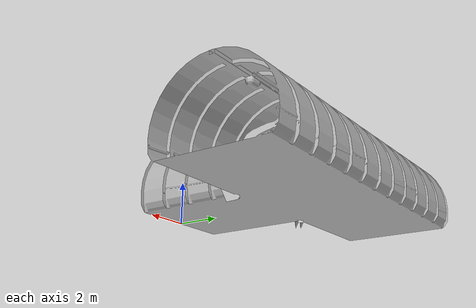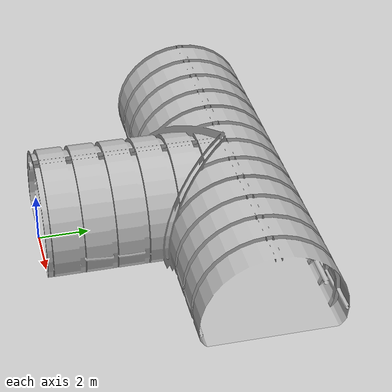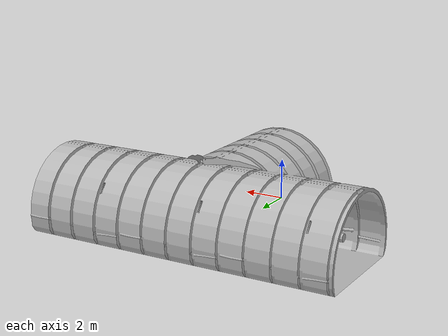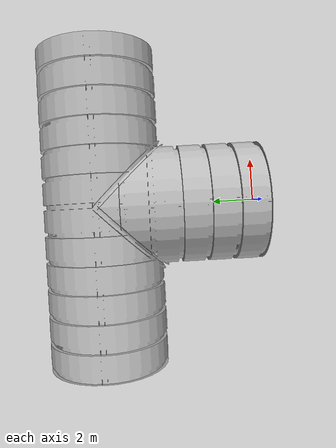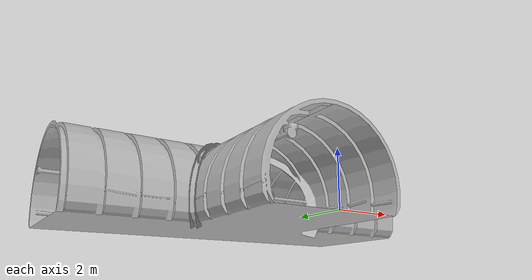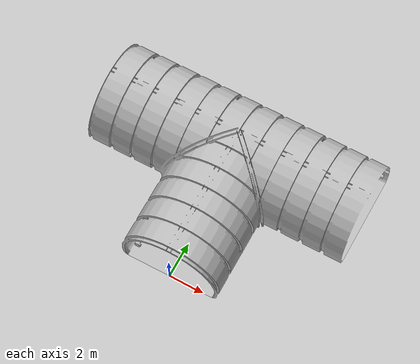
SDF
<?xml version="1.0" ?>
<sdf version="1.6">
  <model name="tunnel_intersection_t">
    <static>true</static>
    <link name="link">
      <collision name="collision">
        <geometry>
          <mesh>
            <scale>0.01 0.01 0.01</scale>
            <uri>model://tunnel_intersection_t/meshes/Tunnel_Intersection_T.obj</uri>
          </mesh>
        </geometry>
      </collision>
      <visual name="visual">
        <geometry>
          <mesh>
            <scale>0.01 0.01 0.01</scale>
            <uri>model://tunnel_intersection_t/meshes/Tunnel_Intersection_T.obj</uri>
          </mesh>
        </geometry>
      </visual>
    </link>
  </model>
</sdf>
